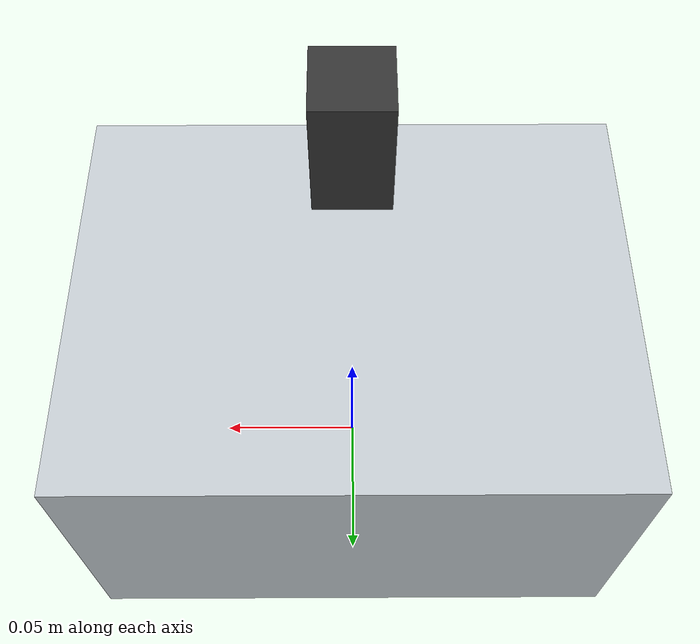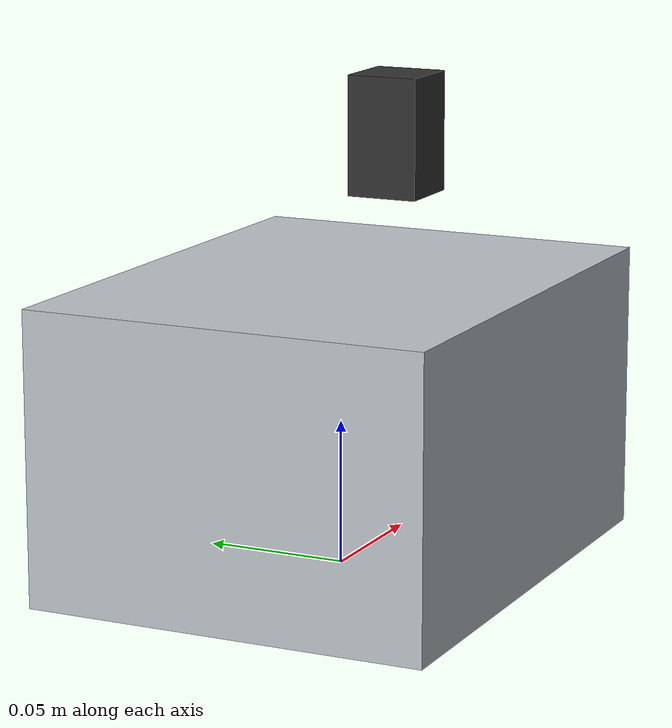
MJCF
<?xml version="1.0" encoding="utf-8"?>
<mujoco model="hplc_injector_plunger">
  <compiler angle="radian" autolimits="true"/>
  <default>
    <default class="body"><geom contype="1" conaffinity="1"/></default>
  </default>
  <worldbody>
    <body name="base">
      <geom type="box" size="0.09 0.07 0.05" pos="0 0 0.05" rgba="0.75 0.78 0.8 1" class="body"/>
      <body name="part" pos="0.0 -0.02 0.15">
        <joint name="part_joint" type="slide" axis="0 0 1" range="-0.04 0.0" damping="1.0" frictionloss="0.3"/>
  <geom name="part_body" type="box" size="0.012 0.012 0.02" pos="0 0 0" rgba="0.2 0.2 0.2 1" class="body"/>
        <site name="grasp_site" pos="0 0 0" size="0.005" rgba="1 0 0 1" group="4"/>
      </body>
    </body>
  </worldbody>
</mujoco>
